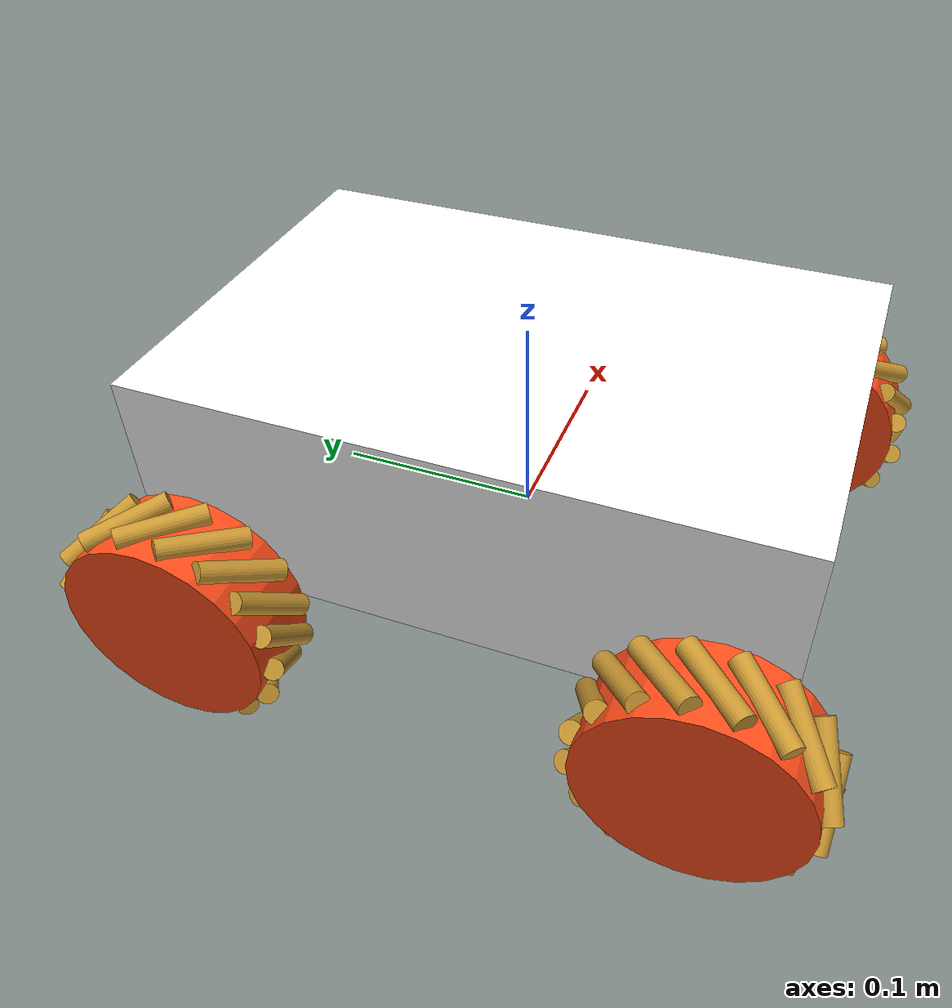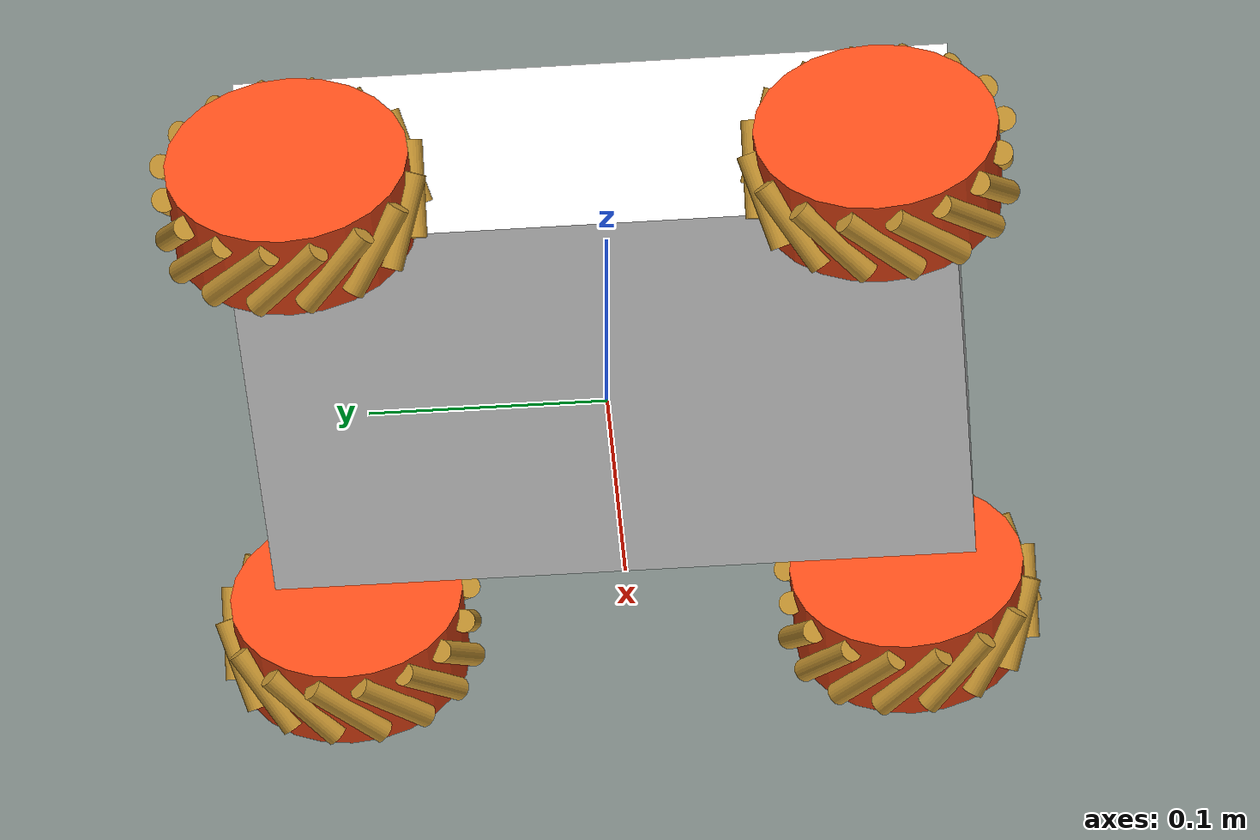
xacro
<?xml version="1.0"?>
<robot xmlns:xacro="http://www.ros.org/wiki/xacro">
    <xacro:include filename="inertial.xacro"/>
    <xacro:include filename="mecanum_wheel.xacro"/>

    <xacro:property name="body_size_x" value="0.2"/>
    <xacro:property name="body_size_y" value="0.3"/>
    <xacro:property name="body_size_z" value="0.1"/>

    <xacro:property name="wheel_offset_x" value="0.125"/>
    <xacro:property name="wheel_offset_y" value="0.12"/>
    <xacro:property name="wheel_offset_z" value="0"/>

    <link name="base_link">

    </link>

    <joint name="chasis_joint" type="fixed">
        <parent link="base_link"/>
        <child link="chassis_link"/>
        <origin xyz="0.0 0.0 0.0"/>
    </joint>

    <!-- Chassis Link -->

    <material name="chassis_color">
        <color rgba="1.0 1.0 1.0 1.0"/>
    </material>

    <link name="chassis_link">
        <visual>
            <origin xyz="0.0 0.0 0.05"/>
            <geometry>
                <box size="${body_size_x} ${body_size_y} ${body_size_z}"/>
            </geometry>
            <material name="chassis_color"/>
        </visual>
        <collision>
            <origin xyz="0.0 0.0 0.05"/>
            <geometry>
                <box size="${body_size_x} ${body_size_y} ${body_size_z}"/>
            </geometry>
        </collision>
        <xacro:inertial_box mass="0.5" x="${body_size_x}" y="${body_size_y}" z="${body_size_z}">
            <origin xyz="0.15 0 0.075" rpy="0 0 0"/>
        </xacro:inertial_box>
    </link>

    <gazebo reference="chassis_link">
        <material>Gazebo/White</material>
    </gazebo>

    <!-- Wheels -->

        <xacro:mecanum_wheel prefix="fl" parent="chassis_link" direction="-1">
            <origin xyz="-${wheel_offset_x} ${wheel_offset_y} ${wheel_offset_z}" rpy="0.0 -${pi/2} 0.0"/>
        </xacro:mecanum_wheel>

        <xacro:mecanum_wheel prefix="fr" parent="chassis_link" direction="1">
            <origin xyz="${wheel_offset_x} ${wheel_offset_y} ${wheel_offset_z}" rpy="0.0 -${pi/2} 0.0"/>
        </xacro:mecanum_wheel>

        <xacro:mecanum_wheel prefix="rl" parent="chassis_link" direction="1">
            <origin xyz="-${wheel_offset_x} -${wheel_offset_y} ${wheel_offset_z}" rpy="0.0 -${pi/2} 0.0"/>
        </xacro:mecanum_wheel>

        <xacro:mecanum_wheel prefix="rr" parent="chassis_link" direction="-1">
            <origin xyz="${wheel_offset_x} -${wheel_offset_y} ${wheel_offset_z}" rpy="0.0 -${pi/2} 0.0"/>
        </xacro:mecanum_wheel>

</robot>

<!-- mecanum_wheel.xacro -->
<robot xmlns:xacro="http://www.ros.org/wiki/xacro" name="wheel">
    <xacro:include filename="inertial.xacro"/>

    <material name="wheel_color">
        <color rgba="1 0.3 0.1 1"/>
    </material>
    <material name="roller_color">
        <color rgba="0.8 0.6 0.2 1"/>
    </material>

    <xacro:macro name="rollers_loop" params="iterator qty prefix parent radius direction">
        <joint name="roller_${prefix}_wheel_joint_${iterator}" type="continuous">
            <origin xyz="${sin((iterator/qty) * 2 * pi) * radius} ${cos((iterator/qty) * 2 * pi) * radius} 0.0" rpy="${sin((iterator/qty) * 2 * pi) * pi/4 * direction} ${cos((iterator/qty) * 2 * pi) * pi/4 * direction} 0.0"/>
            <parent link="${parent}"/>
            <child link="roller_${prefix}_wheel_link_${iterator}"/>
            <axis xyz="0 0 1"/>
        </joint>

        <link name="roller_${prefix}_wheel_link_${iterator}">
            <visual>
                <geometry>
                    <cylinder radius="0.005" length="0.04"/>
                </geometry>
                <material name="roller_color"/>
            </visual>
            <collision>
                <geometry>
                    <cylinder radius="0.005" length="0.04"/>
                </geometry>
            </collision>
            <xacro:inertial_cylinder mass="0.01" length="0.04" radius="0.0025">
                <origin xyz="0 0 0" rpy="0 0 0"/>
            </xacro:inertial_cylinder>
        </link>

        <gazebo reference="roller_${prefix}_wheel_link_${iterator}">
            <material>Gazebo/Orange</material>
        </gazebo>

        <xacro:if value="${iterator}">
            <xacro:rollers_loop iterator="${iterator-1}" qty="${qty}" prefix="${prefix}" parent="${parent}" radius="${radius}" direction="${direction}"/>
        </xacro:if>
    </xacro:macro>

    <xacro:macro name="rollers" params="qty prefix parent radius direction">
        <xacro:rollers_loop iterator="${qty-1}" qty="${qty}" prefix="${prefix}" parent="${parent}" radius="${radius}" direction="${direction}"/>
    </xacro:macro>

    <xacro:macro name="mecanum_wheel" params="prefix parent *origin direction">

        <joint name="${prefix}_wheel_joint" type="continuous">
            <parent link="${parent}"/>
            <child link="${prefix}_wheel_link"/>
            <xacro:insert_block name="origin"/>
            <axis xyz="0 0 1"/>
        </joint>

        <link name="${prefix}_wheel_link">
            <visual>
                <geometry>
                    <cylinder radius="0.05" length="0.04"/>
                </geometry>
                <material name="wheel_color"/>
            </visual>
            <collision>
                <geometry>
                    <cylinder radius="0.05" length="0.04"/>
                </geometry>
            </collision>
            <xacro:inertial_cylinder mass="0.1" length="0.04" radius="0.05">
                <origin xyz="0 0 0" rpy="0 0 0"/>
            </xacro:inertial_cylinder>
        </link>

        <gazebo reference="${prefix}_wheel_link">
            <material>Gazebo/Blue</material>
        </gazebo>

        <xacro:rollers qty="16" prefix="${prefix}" parent="${prefix}_wheel_link" radius="0.05" direction="${direction}"/>

    </xacro:macro>

</robot>
